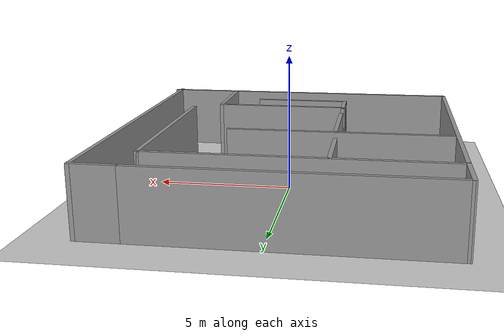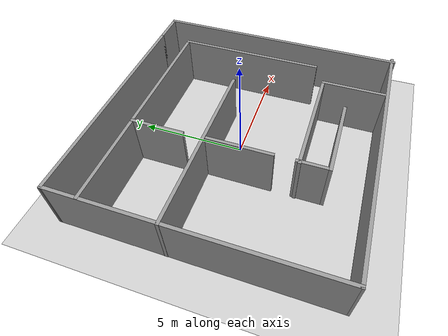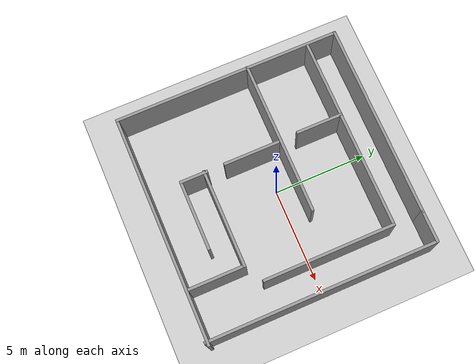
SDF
<?xml version="1.0" ?>
<sdf version="1.4">
  <world name="default">
    <scene>
      <ambient>0.5 0.5 0.5 1</ambient>
      <background>0.5 0.5 0.5 1</background>
      <shadows>false</shadows>
    </scene>
    <physics type="ode">
      <gravity>0 0 -9.8</gravity>
      <ode>
        <solver>
          <type>quick</type>
          <iters>10</iters>
          <sor>1.3</sor>
        </solver>
        <constraints>
          <cfm>0.0</cfm>
          <erp>0.2</erp>
          <contact_max_correcting_vel>100.0</contact_max_correcting_vel>
          <contact_surface_layer>0.001</contact_surface_layer>
        </constraints>
      </ode>
      <real_time_update_rate>1000</real_time_update_rate>
      <max_step_size>0.001</max_step_size>
    </physics>
    <include>
      <uri>model://ground_plane</uri>
    </include>
    <include>
      <uri>model://maze</uri>
    </include>
    <light type="directional" name="my_light">
      <pose>0 0 30 0 0 0</pose>
      <diffuse>.5 .5 .5 1</diffuse>
      <specular>.1 .1 .1 1</specular>
      <attenuation>
        <range>200</range>
      </attenuation>
      <direction>0 0 -1</direction>
      <cast_shadows>false</cast_shadows>
    </light>
  </world>
</sdf>

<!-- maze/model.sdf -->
<sdf version='1.6'>
  <model name='maze'>
    <pose frame=''>0.012805 -0.13836 0 0 -0 0</pose>
    <link name='Wall_0'>
      <collision name='Wall_0_Collision'>
        <geometry>
          <box>
            <size>10.5 0.15 2.5</size>
          </box>
        </geometry>
        <pose frame=''>0 0 1.25 0 -0 0</pose>
      </collision>
      <visual name='Wall_0_Visual'>
        <pose frame=''>0 0 1.25 0 -0 0</pose>
        <geometry>
          <box>
            <size>10.5 0.15 2.5</size>
          </box>
        </geometry>
        <material>
          <script>
            <uri>file://media/materials/scripts/gazebo.material</uri>
            <name>Gazebo/Grey</name>
          </script>
          <ambient>1 1 1 1</ambient>
        </material>
      </visual>
      <pose frame=''>-0.881734 6.04995 0 0 -0 0</pose>
    </link>
    <link name='Wall_1'>
      <collision name='Wall_1_Collision'>
        <geometry>
          <box>
            <size>1.75 0.15 2.5</size>
          </box>
        </geometry>
        <pose frame=''>0 0 1.25 0 -0 0</pose>
      </collision>
      <visual name='Wall_1_Visual'>
        <pose frame=''>0 0 1.25 0 -0 0</pose>
        <geometry>
          <box>
            <size>1.75 0.15 2.5</size>
          </box>
        </geometry>
        <material>
          <script>
            <uri>file://media/materials/scripts/gazebo.material</uri>
            <name>Gazebo/Grey</name>
          </script>
          <ambient>1 1 1 1</ambient>
        </material>
      </visual>
      <pose frame=''>5.09327 6.04995 0 0 -0 0</pose>
    </link>
    <link name='Wall_11'>
      <collision name='Wall_11_Collision'>
        <geometry>
          <box>
            <size>3 0.15 2.5</size>
          </box>
        </geometry>
        <pose frame=''>0 0 1.25 0 -0 0</pose>
      </collision>
      <visual name='Wall_11_Visual'>
        <pose frame=''>0 0 1.25 0 -0 0</pose>
        <geometry>
          <box>
            <size>3 0.15 2.5</size>
          </box>
        </geometry>
        <material>
          <script>
            <uri>file://media/materials/scripts/gazebo.material</uri>
            <name>Gazebo/Grey</name>
          </script>
          <ambient>1 1 1 1</ambient>
        </material>
      </visual>
      <pose frame=''>3.275 -4.39132 0 0 0 -1.5708</pose>
    </link>
    <link name='Wall_13'>
      <collision name='Wall_13_Collision'>
        <geometry>
          <box>
            <size>3.75 0.15 2.5</size>
          </box>
        </geometry>
        <pose frame=''>0 0 1.25 0 -0 0</pose>
      </collision>
      <visual name='Wall_13_Visual'>
        <pose frame=''>0 0 1.25 0 -0 0</pose>
        <geometry>
          <box>
            <size>3.75 0.15 2.5</size>
          </box>
        </geometry>
        <material>
          <script>
            <uri>file://media/materials/scripts/gazebo.material</uri>
            <name>Gazebo/Grey</name>
          </script>
          <ambient>1 1 1 1</ambient>
        </material>
      </visual>
      <pose frame=''>0.015679 -4.2161 0 0 -0 0</pose>
    </link>
    <link name='Wall_16'>
      <collision name='Wall_16_Collision'>
        <geometry>
          <box>
            <size>1.5 0.15 2.5</size>
          </box>
        </geometry>
        <pose frame=''>0 0 1.25 0 -0 0</pose>
      </collision>
      <visual name='Wall_16_Visual'>
        <pose frame=''>0 0 1.25 0 -0 0</pose>
        <geometry>
          <box>
            <size>1.5 0.15 2.5</size>
          </box>
        </geometry>
        <material>
          <script>
            <uri>file://media/materials/scripts/gazebo.material</uri>
            <name>Gazebo/Grey</name>
          </script>
          <ambient>1 1 1 1</ambient>
        </material>
      </visual>
      <pose frame=''>-1.78432 -3.5411 0 0 -0 1.5708</pose>
    </link>
    <link name='Wall_20'>
      <collision name='Wall_20_Collision'>
        <geometry>
          <box>
            <size>5.25 0.15 2.5</size>
          </box>
        </geometry>
        <pose frame=''>0 0 1.25 0 -0 0</pose>
      </collision>
      <visual name='Wall_20_Visual'>
        <pose frame=''>0 0 1.25 0 -0 0</pose>
        <geometry>
          <box>
            <size>5.25 0.15 2.5</size>
          </box>
        </geometry>
        <material>
          <script>
            <uri>file://media/materials/scripts/gazebo.material</uri>
            <name>Gazebo/Grey</name>
          </script>
          <ambient>1 1 1 1</ambient>
        </material>
      </visual>
      <pose frame=''>0.724999 -2.96632 0 0 -0 3.14159</pose>
    </link>
    <link name='Wall_22'>
      <collision name='Wall_22_Collision'>
        <geometry>
          <box>
            <size>3 0.15 2.5</size>
          </box>
        </geometry>
        <pose frame=''>0 0 1.25 0 -0 0</pose>
      </collision>
      <visual name='Wall_22_Visual'>
        <pose frame=''>0 0 1.25 0 -0 0</pose>
        <geometry>
          <box>
            <size>3 0.15 2.5</size>
          </box>
        </geometry>
        <material>
          <script>
            <uri>file://media/materials/scripts/gazebo.material</uri>
            <name>Gazebo/Grey</name>
          </script>
          <ambient>1 1 1 1</ambient>
        </material>
      </visual>
      <pose frame=''>-1.78855 -0.426354 0 0 -0 1.5708</pose>
    </link>
    <link name='Wall_24'>
      <collision name='Wall_24_Collision'>
        <geometry>
          <box>
            <size>8.25 0.15 2.5</size>
          </box>
        </geometry>
        <pose frame=''>0 0 1.25 0 -0 0</pose>
      </collision>
      <visual name='Wall_24_Visual'>
        <pose frame=''>0 0 1.25 0 -0 0</pose>
        <geometry>
          <box>
            <size>8.25 0.15 2.5</size>
          </box>
        </geometry>
        <material>
          <script>
            <uri>file://media/materials/scripts/gazebo.material</uri>
            <name>Gazebo/Grey</name>
          </script>
          <ambient>1 1 1 1</ambient>
        </material>
      </visual>
      <pose frame=''>-2.00855 1.15865 0 0 -0 0</pose>
    </link>
    <link name='Wall_26'>
      <collision name='Wall_26_Collision'>
        <geometry>
          <box>
            <size>2.5 0.15 2.5</size>
          </box>
        </geometry>
        <pose frame=''>0 0 1.25 0 -0 0</pose>
      </collision>
      <visual name='Wall_26_Visual'>
        <pose frame=''>0 0 1.25 0 -0 0</pose>
        <geometry>
          <box>
            <size>2.5 0.15 2.5</size>
          </box>
        </geometry>
        <material>
          <script>
            <uri>file://media/materials/scripts/gazebo.material</uri>
            <name>Gazebo/Grey</name>
          </script>
          <ambient>1 1 1 1</ambient>
        </material>
      </visual>
      <pose frame=''>-1.8566 3.29476 0 0 0 -1.5708</pose>
    </link>
    <link name='Wall_28'>
      <collision name='Wall_28_Collision'>
        <geometry>
          <box>
            <size>10.5 0.15 2.5</size>
          </box>
        </geometry>
        <pose frame=''>0 0 1.25 0 -0 0</pose>
      </collision>
      <visual name='Wall_28_Visual'>
        <pose frame=''>0 0 1.25 0 -0 0</pose>
        <geometry>
          <box>
            <size>10.5 0.15 2.5</size>
          </box>
        </geometry>
        <material>
          <script>
            <uri>file://media/materials/scripts/gazebo.material</uri>
            <name>Gazebo/Grey</name>
          </script>
          <ambient>1 1 1 1</ambient>
        </material>
      </visual>
      <pose frame=''>-0.866175 4.477 0 0 -0 0</pose>
    </link>
    <link name='Wall_32'>
      <collision name='Wall_32_Collision'>
        <geometry>
          <box>
            <size>7 0.15 2.5</size>
          </box>
        </geometry>
        <pose frame=''>0 0 1.25 0 -0 0</pose>
      </collision>
      <visual name='Wall_32_Visual'>
        <pose frame=''>0 0 1.25 0 -0 0</pose>
        <geometry>
          <box>
            <size>7 0.15 2.5</size>
          </box>
        </geometry>
        <material>
          <script>
            <uri>file://media/materials/scripts/gazebo.material</uri>
            <name>Gazebo/Grey</name>
          </script>
          <ambient>1 1 1 1</ambient>
        </material>
      </visual>
      <pose frame=''>4.30882 1.052 0 0 0 -1.5708</pose>
    </link>
    <link name='Wall_5'>
      <collision name='Wall_5_Collision'>
        <geometry>
          <box>
            <size>12.25 0.15 2.5</size>
          </box>
        </geometry>
        <pose frame=''>0 0 1.25 0 -0 0</pose>
      </collision>
      <visual name='Wall_5_Visual'>
        <pose frame=''>0 0 1.25 0 -0 0</pose>
        <geometry>
          <box>
            <size>12.25 0.15 2.5</size>
          </box>
        </geometry>
        <material>
          <script>
            <uri>file://media/materials/scripts/gazebo.material</uri>
            <name>Gazebo/Grey</name>
          </script>
          <ambient>1 1 1 1</ambient>
        </material>
      </visual>
      <pose frame=''>0.008549 -5.96099 0 0 -0 0</pose>
    </link>
    <link name='Wall_7'>
      <collision name='Wall_7_Collision'>
        <geometry>
          <box>
            <size>12.161 0.15 2.5</size>
          </box>
        </geometry>
        <pose frame=''>0 0 1.25 0 -0 0</pose>
      </collision>
      <visual name='Wall_7_Visual'>
        <pose frame=''>0 0 1.25 0 -0 0</pose>
        <geometry>
          <box>
            <size>12.161 0.15 2.5</size>
          </box>
        </geometry>
        <material>
          <script>
            <uri>file://media/materials/scripts/gazebo.material</uri>
            <name>Gazebo/Grey</name>
          </script>
          <ambient>1 1 1 1</ambient>
        </material>
      </visual>
      <pose frame=''>-6.04909 0.044481 0 0 0 -1.56952</pose>
    </link>
    <link name='Wall_9'>
      <collision name='Wall_9_Collision'>
        <geometry>
          <box>
            <size>12.25 0.15 2.5</size>
          </box>
        </geometry>
        <pose frame=''>0 0 1.25 0 -0 0</pose>
      </collision>
      <visual name='Wall_9_Visual'>
        <pose frame=''>0 0 1.25 0 -0 0</pose>
        <geometry>
          <box>
            <size>12.25 0.15 2.5</size>
          </box>
        </geometry>
        <material>
          <script>
            <uri>file://media/materials/scripts/gazebo.material</uri>
            <name>Gazebo/Grey</name>
          </script>
          <ambient>1 1 1 1</ambient>
        </material>
      </visual>
      <pose frame=''>5.89327 -4.7e-05 0 0 0 -1.5708</pose>
    </link>
    <static>1</static>
  </model>
</sdf>
